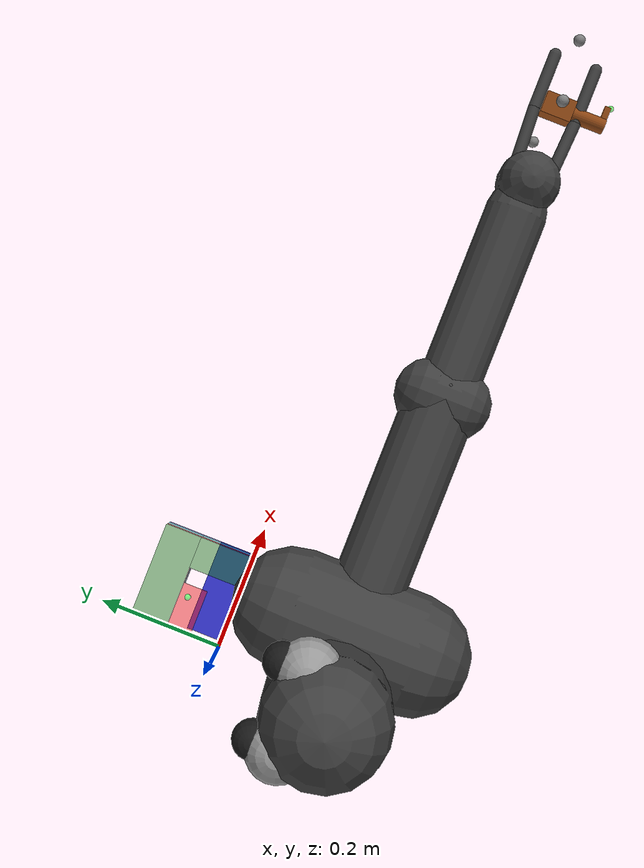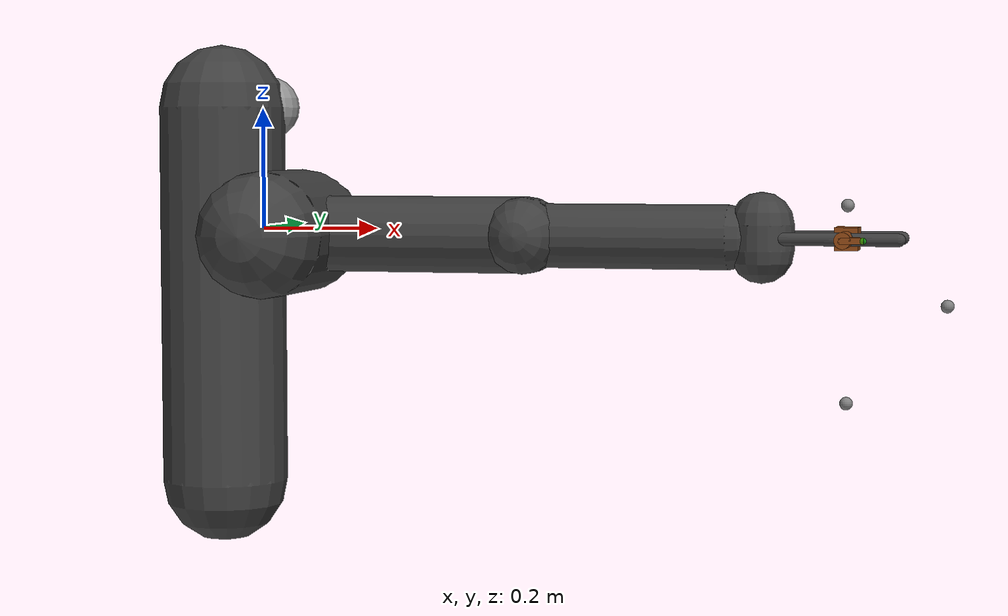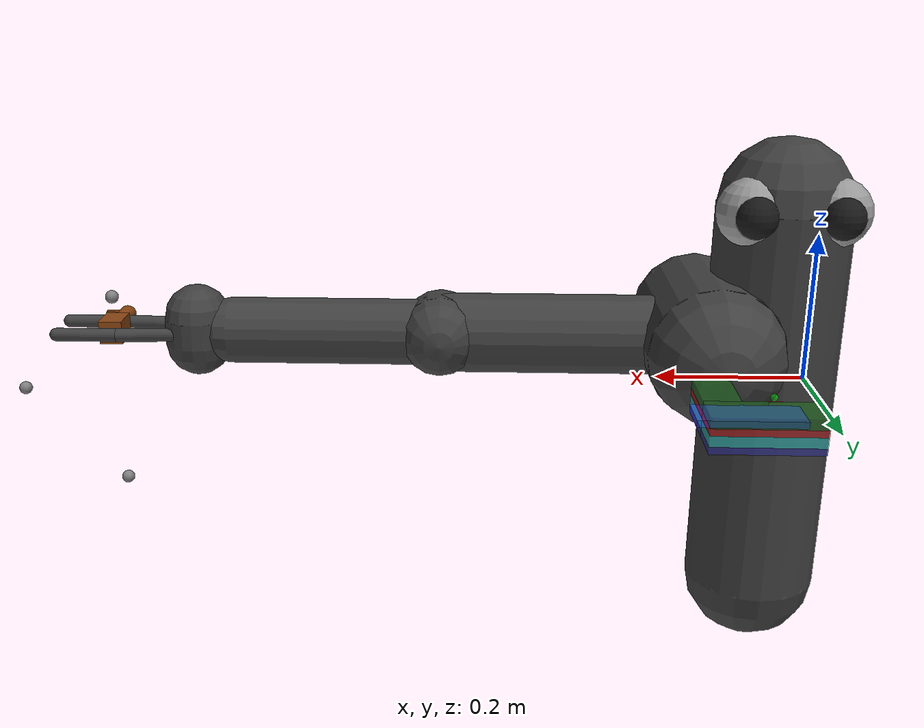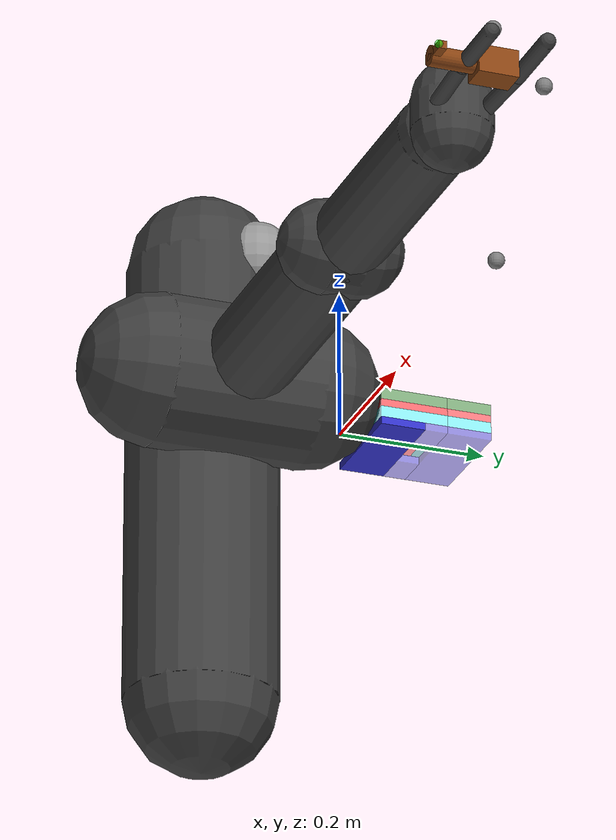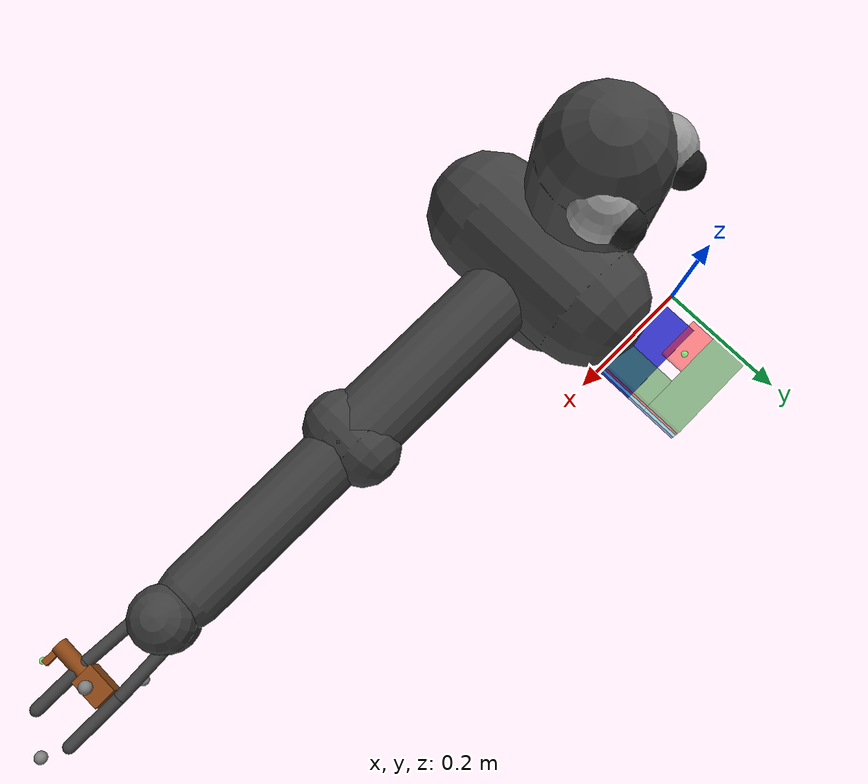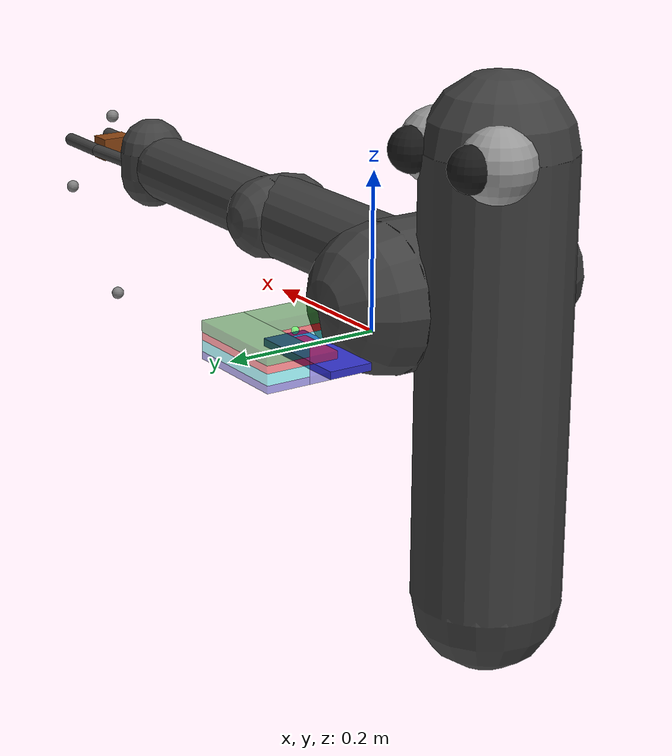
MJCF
<mujoco model="arm3d">

    <compiler inertiafromgeom="true" angle="radian" coordinate="local" />
    <option timestep="0.01" gravity="0 0 0" iterations="20" integrator="Euler" />
    <default>
        <joint armature="0.04" damping="1" limited="true" />
        <geom friction=".5 .1 .1" margin="0.002" condim="1" contype="0" conaffinity="0" />
    </default>
    <visual>
        <map shadowclip="100" shadowscale="0.3"/>
        <headlight ambient="0.8 0.8 0.8" />
    </visual>

    <asset>
        <material name="non-reflect" specular="0" shininess="0"/>
    </asset>

    <worldbody>
        <body name="r_shoulder_pan_link" pos="0 -0.188 0">
            <geom name="e1" type="sphere" rgba="0.6 0.6 0.6 1" pos="-0.06 0.05 0.2" size="0.05" />
            <geom name="e2" type="sphere" rgba="0.6 0.6 0.6 1" pos=" 0.06 0.05 0.2" size="0.05" />
            <geom name="e1p" type="sphere" rgba="0.1 0.1 0.1 1" pos="-0.06 0.09 0.2" size="0.03" />
            <geom name="e2p" type="sphere" rgba="0.1 0.1 0.1 1" pos=" 0.06 0.09 0.2" size="0.03" />
            <geom name="sp" type="capsule" fromto="0 0 -0.4 0 0 0.2" size="0.1" contype="1" conaffinity="1" rgba="0.25 0.25 0.25 1"/>
            <joint name="r_shoulder_pan_joint" type="hinge" pos="0 0 0" axis="0 0 1" range="-2.2854 1.714602" damping="10.0" />

            <body name="r_shoulder_lift_link" pos="0.1 0 0">
                <geom name="sl" type="capsule" fromto="0 -0.1 0 0 0.1 0" size="0.1" contype="1" conaffinity="1" rgba="0.25 0.25 0.25 1"/>
                <joint name="r_shoulder_lift_joint" type="hinge" pos="0 0 0" axis="0 1 0" range="-0.5236 1.3963" damping="10.0" />

                <body name="r_upper_arm_roll_link" pos="0 0 0">
                    <geom name="uar" type="capsule" fromto="-0.1 0 0 0.1 0 0" size="0.02" rgba="0.25 0.25 0.25 1" />
                    <joint name="r_upper_arm_roll_joint" type="hinge" pos="0 0 0" axis="1 0 0" range="-3.9 0.8" damping="0.1" />

                    <body name="r_upper_arm_link" pos="0 0 0">
                        <geom name="ua" type="capsule" fromto="0 0 0 0.4 0 0" size="0.06"  contype="1" conaffinity="1" rgba="0.25 0.25 0.25 1"/>

                        <body name="r_elbow_flex_link" pos="0.4 0 0">
                            <geom name="ef" type="capsule" fromto="0 -0.02 0 0.0 0.02 0" size="0.06" rgba="0.25 0.25 0.25 1"/>
                            <joint name="r_elbow_flex_joint" type="hinge" pos="0 0 0" axis="0 1 0" range="-2.3213 0" damping="1.0" />

                            <body name="r_forearm_roll_link" pos="0 0 0">
                                <geom name="fr" type="capsule" fromto="-0.1 0 0 0.1 0 0" size="0.02" rgba="0.25 0.25 0.25 1"/>
                                <joint name="r_forearm_roll_joint" type="hinge" pos="0 0 0" axis="1 0 0" range="-3.15 3.15" damping=".1" />

                                <body name="r_forearm_link" pos="0 0 0">
                                    <geom name="fa" type="capsule" fromto="0 0 0 0.321 0 0" size="0.05"  contype="1" conaffinity="1" rgba="0.25 0.25 0.25 1"/>

                                    <body name="r_wrist_flex_link" pos="0.321 0 0">
                                        <geom name="wf" type="capsule" fromto="0 -0.02 0 0 0.02 0" size="0.01" rgba="0.25 0.25 0.25 1"/>
                                        <joint name="r_wrist_flex_joint" type="hinge" pos="0 0 0" axis="0 1 0" range="-2.094 0" damping=".1" />

                                        <body name="r_wrist_roll_link" pos="0 0 0">
                                            <geom name="wr" type="capsule" fromto="-0.02 0 0 0.02 0 0" size="0.01" rgba="0.25 0.25 0.25 1"/>
                                            <joint name="r_wrist_roll_joint" type="hinge" pos="0 0 0" axis="1 0 0" range="-3.15 3.15" damping="0.1" />

                                            <body name="r_gripper_palm_link" pos="0 0 0">
                                                <geom name="pl" type="capsule" fromto="0.05 0 -0.02 0.05 0 0.02" size="0.05" rgba="0.25 0.25 0.25 1"/>

                                                <body name="r_gripper_tool_frame" pos="0.18 0 0">
                                                    <site name="leg_bottom" pos="0 0 -0.25" size="0.01" />
                                                    <site name="leg_top" pos="0 0 0.05" size="0.01" />
                                                    <site name="leg_right" pos="0.15 0 -0.1" size="0.01" />
                                                      <body name="key" pos="0 0 0" euler="1.5707963267948966 0 0">
                                                                    <geom name="key_geom" rgba="0.545098 0.270588 0.07450987 1"  type="box" size="0.0175 0.0175 0.025" contype="1" conaffinity="1"  />
                                                                            key

                                                                    <geom name="key_head_geom1" rgba="0.545098 0.270588 0.07450987 1" type="cylinder" size="0.0125" fromto="0 0 0.025 0 0 0.08" density="2000" contype="1" conaffinity="1" />
                                                                <!--cylinder takes radius and half length-->
                                                                    <geom name="key_head_geom2" rgba="0.545098 0.270588 0.07450987 1" pos="0.0125 0 0.075" type="box" size="0.01875 0.005 0.005" density="2000" contype="1" conaffinity="1" />
                                                                     <geom name="debug2" type="sphere" rgba="0.0 1.0 0.0 0.5" pos="0.03075 0.0 0.08" size="0.005" />
                                                    </body>

                                                </body>

                                                <body name="r_gripper_l_finger_link" pos="0.07691 0.03 0">
                                                    <geom name="gf3" type="capsule" fromto="0 0 0 0.09137 0.00495 0" size="0.01" contype="1" conaffinity="1" rgba="0.25 0.25 0.25 1"/>

                                                    <body name="r_gripper_l_finger_tip_link" pos="0.09137 0.00495 0">
                                                        <geom name="gf4" type="capsule" fromto="0 0 0 0.09137 0.0 0" size="0.01" contype="1" conaffinity="1" rgba="0.25 0.25 0.25 1"/>
                                                    </body>
                                                </body>

                                                <body name="r_gripper_r_finger_link" pos="0.07691 -0.03 0">
                                                    <geom name="gf1" type="capsule" fromto="0 0 0 0.09137 -0.00495 0" size="0.01" contype="1" conaffinity="1" rgba="0.25 0.25 0.25 1"/>

                                                    <body name="r_gripper_r_finger_tip_link" pos="0.09137 -0.00495 0">
                                                        <geom name="gf2" type="capsule" fromto="0 0 0 0.09137 0.0 0" size="0.01" contype="1" conaffinity="1" rgba="0.25 0.25 0.25 1"/>
                                                    </body>
                                                </body>
                                            </body>
                                        </body>
                                    </body>
                                </body>
                            </body>
                        </body>
                    </body>
                </body>
            </body>
        </body>

        <body name="keyhole" pos="0 0 0" euler="-3.141592653589793 0 -1.57079632679">

            <body name="a1" pos="0.03 0.075 0.045">
                <geom name="a1" rgba="0.2 0.2 0.8 1" type="box" size="0.03 0.075 0.005" contype="1" conaffinity="1" />
            </body>

            <body name="a2" pos="0.12 0.075 0.045">
                <geom name="a2" rgba="0.2 0.2 0.8 0.5" type="box" size="0.03 0.075 0.005" contype="1" conaffinity="1" />
            </body>

            <body name="a3" pos="0.075 0.025 0.045">
                <geom name="a3" rgba="0.2 0.2 0.8 0.5" type="box" size="0.015 0.025 0.005" contype="1" conaffinity="1" />
            </body>

            <body name="a4" pos="0.075 0.125 0.045">
                <geom name="a4" rgba="0.2 0.2 0.8 0.5" type="box" size="0.015 0.025 0.005" contype="1" conaffinity="1" />
            </body>

            <body name="b1" pos="0.045 0.125 0.0325">
                <geom name="b1" rgba="0.2 1 1 0.5" type="box" size="0.045 0.025 0.0075" contype="1" conaffinity="1" />
            </body>

            <body name="b2" pos="0.12 0.075 0.0325">
                <geom name="b2" rgba="0.2 1 1 0.5" type="box" size="0.03 0.075 0.0075" contype="1" conaffinity="1" />
            </body>

            <body name="c1" pos="0.045 0.125 0.02">
                <geom name="c1" rgba="1 0 0 0.5" type="box" size="0.045 0.025 0.005" contype="1" conaffinity="1" />
            </body>

            <body name="c2" pos="0.12 0.075 0.02">
                <geom name="c2" rgba="1 0.1 0.1 0.5" type="box" size="0.03 0.075 0.005" contype="1" conaffinity="1" />
            </body>

            <!--extra piece that forces turn-->
            <body name="c3" pos="0.07 0.035 0.02">
                <geom name="c3" rgba="1 0.1 0.1 0.5" type="box" size="0.02 0.035 0.005" contype="1" conaffinity="1" />
            </body>

            <body name="d1" pos="0.045 0.125 0.0075">
                <geom name="d1" rgba="0.1 0.5 0.1 0.5" type="box" size="0.045 0.025 0.0075" contype="1" conaffinity="1" />
            </body>

            <body name="d2" pos="0.12 0.075 0.0075">
                <geom name="d2" rgba="0.1 0.5 0.1 0.5" type="box" size="0.03 0.075 0.0075" contype="1" conaffinity="1" />
            </body>

            <!--goal position-->
            <body name="debug" pos="0.075 0.055 0">
                <geom name="debug" type="sphere" rgba="0.0 1.0 0.0 0.5" size="0.005" />
            </body>

        </body>

            <!--&lt;!&ndash;extra piece&ndash;&gt;-->

            <!--second body part-->

    </worldbody>

    <actuator>
        <motor joint="r_shoulder_pan_joint" ctrlrange="-1.0 1.0" ctrllimited="true" />
        <motor joint="r_shoulder_lift_joint" ctrlrange="-1.0 1.0" ctrllimited="true" />
        <motor joint="r_upper_arm_roll_joint" ctrlrange="-1.0 1.0" ctrllimited="true" />
        <motor joint="r_elbow_flex_joint" ctrlrange="-1.0 1.0" ctrllimited="true" />
        <motor joint="r_forearm_roll_joint" ctrlrange="-1.0 1.0" ctrllimited="true" />
        <motor joint="r_wrist_flex_joint" ctrlrange="-1.0 1.0" ctrllimited="true" />
        <motor joint="r_wrist_roll_joint" ctrlrange="-1.0 1.0" ctrllimited="true" />
    </actuator>

</mujoco>
